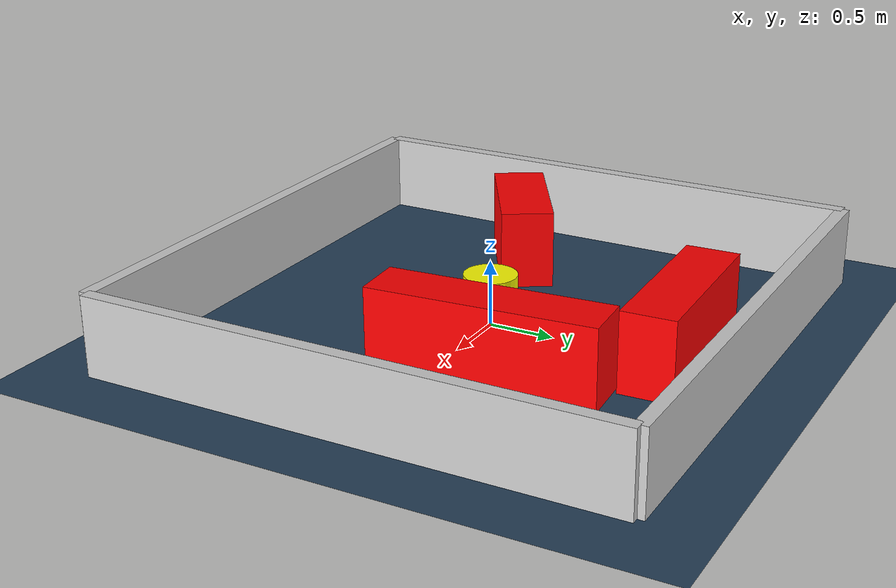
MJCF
<?xml version="1.0" ?>
<mujoco model="generated_environment">
  <option timestep="0.01" integrator="RK4" cone="elliptic"/>
  <default>
    <geom density="1"/>
  </default>
  <asset>
    <texture builtin="gradient" height="3072" rgb1="0.3 0.5 0.7" rgb2="0 0 0" type="skybox" width="512"/>
    <texture builtin="checker" height="300" mark="edge" markrgb="0.8 0.8 0.8" name="groundplane" rgb1="0.2 0.3 0.4" rgb2="0.1 0.2 0.3" type="2d" width="300"/>
    <material name="groundplane" reflectance="0.2" texrepeat="5 5" texture="groundplane" texuniform="true"/>
    <material name="robot" rgba="0.0 1.0 0.0 1"/>
  </asset>
  <worldbody>
    <light dir="0 0 -1" directional="true" pos="0 0 1.5"/>
    <geom condim="4" friction="1.0 0.005 0.001" material="groundplane" name="floor" size="0 0 0.05" type="plane"/>
    <body name="walls">
      <geom name="wall_1" condim="4" pos="-2.0 0.0 0.3" rgba="0.800000011920929 0.800000011920929 0.800000011920929 1.0" size="0.05 2.0 0.3" type="box"/>
      <geom name="wall_2" condim="4" pos="2.0 0.0 0.3" rgba="0.800000011920929 0.800000011920929 0.800000011920929 1.0" size="0.05 2.0 0.3" type="box"/>
      <geom name="wall_3" condim="4" pos="0.0 -2.0 0.3" rgba="0.800000011920929 0.800000011920929 0.800000011920929 1.0" size="2.0 0.05 0.3" type="box"/>
      <geom name="wall_4" condim="4" pos="0.0 2.0 0.3" rgba="0.800000011920929 0.800000011920929 0.800000011920929 1.0" size="2.0 0.05 0.3" type="box"/>
    </body>
    <body name="robot">
      <joint name="joint_x" type="slide" pos="0 0 0" axis="1 0 0"/>
      <joint name="joint_y" type="slide" pos="0 0 0" axis="0 1 0"/>
      <geom name="robot" type="sphere" pos="0.3 0.0 0.2" size="0.05" mass="5." friction="1.0 0.005 0.0001" condim="4" rgba="0.5 0.5 0.5 1.0"/>
      <site name="sensor_ball"/>
    </body>
    <body name="obstacle_movable_1">
      <geom name="obstacle_movable_1" condim="4" pos="0.0 0.0 0.2" euler="0 0 0.0" friction="1.0 0.005 0.001" rgba="1.0 1.0 0.0 1.0" size="0.2 0.2 0.0" type="cylinder" mass="0.1"/>
      <joint type="free"/>
    </body>
    <body name="obstacle_2_static">
      <geom name="obstacle_2_static" condim="4" pos="-0.0637540069168292 1.4413409973304054 0.3" euler="0 0 181.8657479196625" friction="1.0 0.005 0.001" rgba="1 0 0 1" size="0.6604793669131812 0.2 0.3" type="box"/>
    </body>
    <body name="obstacle_3_static">
      <geom name="obstacle_3_static" condim="4" pos="0.7863740009629043 0.40741693659723777 0.3" euler="0 0 94.01584414836366" friction="1.0 0.005 0.001" rgba="1 0 0 1" size="0.843444331118625 0.2 0.3" type="box"/>
    </body>
    <body name="obstacle_4_static">
      <geom name="obstacle_4_static" condim="4" pos="-1.1988040999558585 -0.34677547559708355 0.3" euler="0 0 30.986403470015237" friction="1.0 0.005 0.001" rgba="1 0 0 1" size="0.4995129126968525 0.2 0.3" type="box"/>
    </body>
  </worldbody>
  <actuator>
    <motor name="actuator_x" joint="joint_x" gear="1" ctrlrange="-1 1"/>
    <motor name="actuator_y" joint="joint_y" gear="1" ctrlrange="-1 1"/>
  </actuator>
</mujoco>
